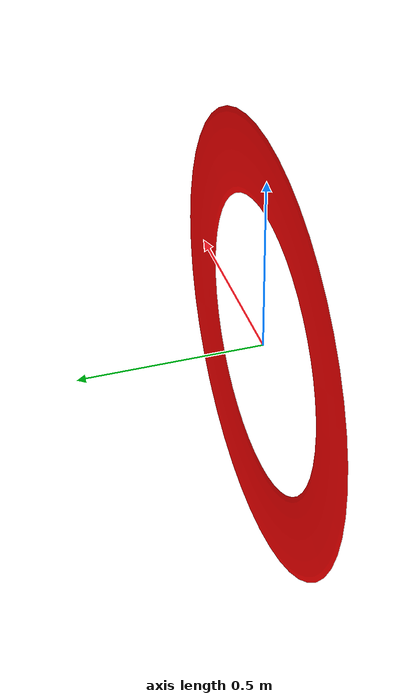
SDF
<?xml version="1.0" ?>
<sdf version="1.7">
    <model name="circle_red">
        <static>false</static>
        <gravity>false</gravity>
        <pose>0.0 0.0 0.0 1.57 0 0</pose>
        <link name="circle">
            <gravity>false</gravity>
            <inertial>
                <pose>0 0 0 0 0 0</pose>
                <mass>0.1</mass>
                <inertia>
                    <ixx>0.0003065083333333333</ixx>
                    <ixy>0</ixy>
                    <ixz>0</ixz>
                    <iyy>0.0001421774166666667</iyy>
                    <iyz>0</iyz>
                    <izz>0.0001670190833333333</izz>
                </inertia>
            </inertial>
            <visual name="circle">
                <geometry>
                    <mesh>
                        <uri>file://install/target_model_pkg/share/target_model_pkg/urdf/circle/meshes/circle.dae</uri>
                        <scale>0.5 0.5 0.05</scale>
                    </mesh>
                </geometry>
                <material >
                    <ambient>1.0 0.0 0.0</ambient>
                    <diffuse>1.0 0.0 0.0</diffuse>
                    <specular>0.6 0.6 0.6</specular>
                </material>
            </visual>
            <collision name ="circle">
                <geometry>
                    <cylinder>
                        <radius>0.5</radius>
                        <length>0.05</length>
                    </cylinder>
                </geometry>
            </collision>
        </link>
        <plugin name ="target_action" filename="libtarget_model_pkg_lib.so">

        </plugin>
    </model>
</sdf>
